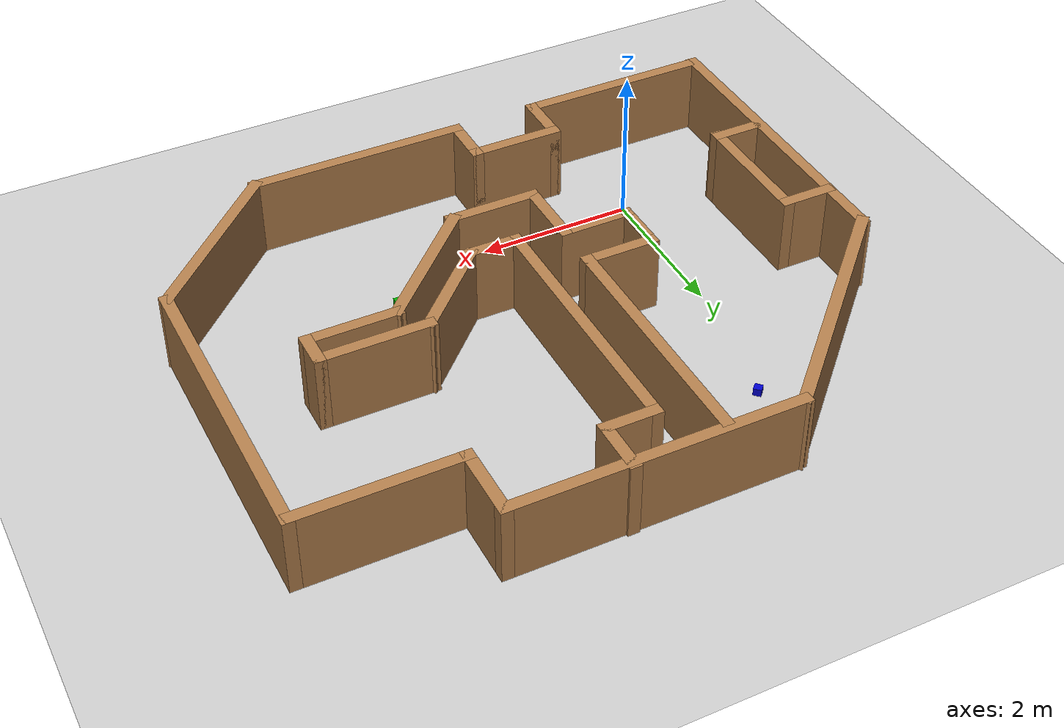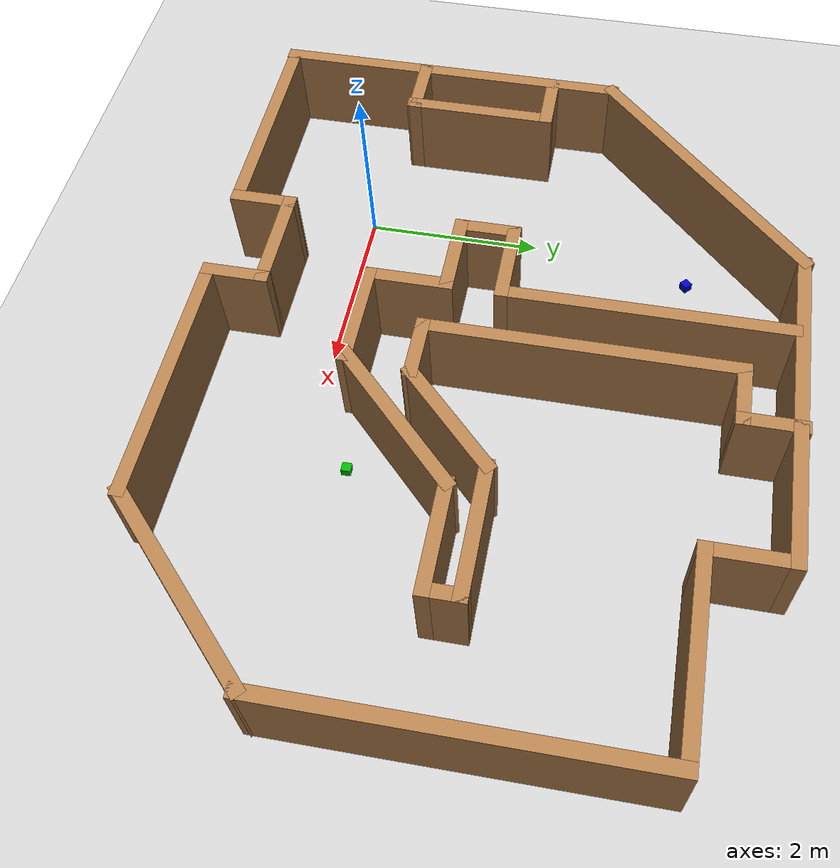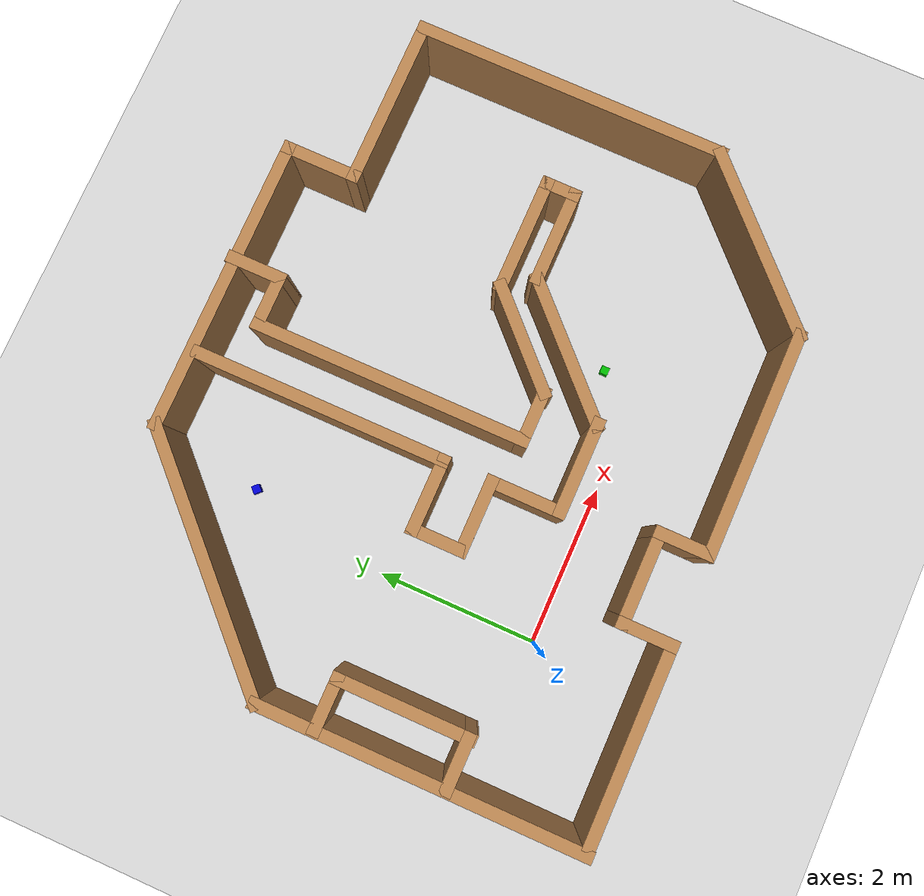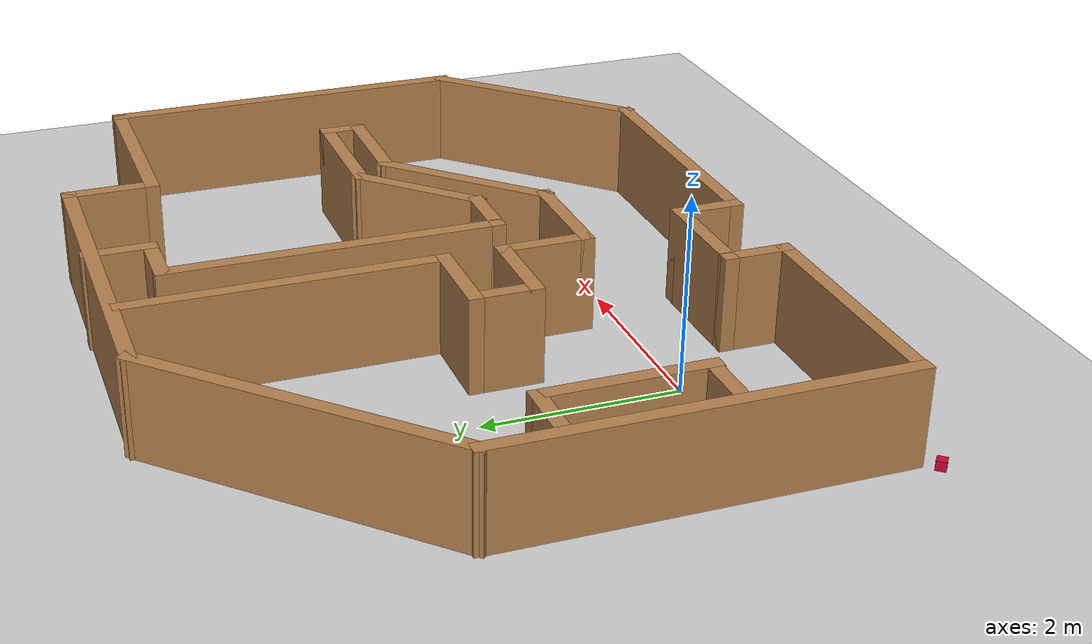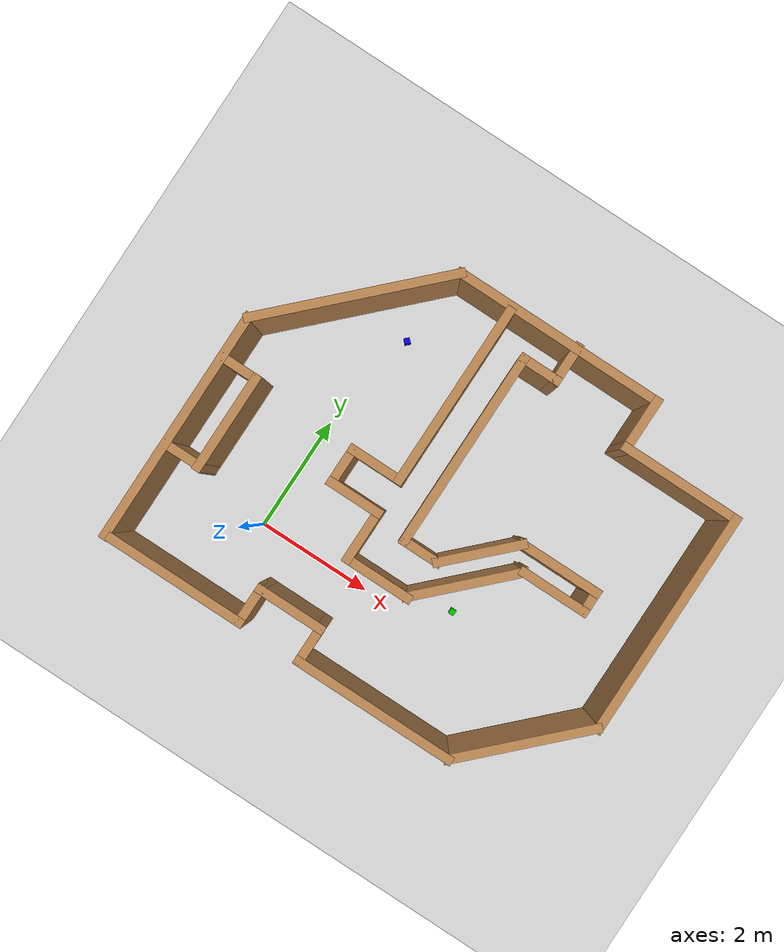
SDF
<sdf version="1.10">
 <world name="default">
  <plugin name="gz::sim::systems::Physics" filename="gz-sim-physics-system"/>
  <plugin name="gz::sim::systems::UserCommands" filename="gz-sim-user-commands-system"/>
  <plugin name="gz::sim::systems::NavSat" filename="gz-sim-navsat-system"/>
  <plugin name="gz::sim::systems::SceneBroadcaster" filename="gz-sim-scene-broadcaster-system"/>
  <plugin name="gz::sim::systems::Sensors" filename="gz-sim-sensors-system">
   <render_engine>ogre2</render_engine>
  </plugin>
  <plugin name="gz::sim::systems::Imu" filename="gz-sim-imu-system"/>
  <gravity>0 0 -9.8000000000000007</gravity>
  <magnetic_field>6.0000000000000002e-06 2.3e-05 -4.1999999999999998e-05</magnetic_field>
  <atmosphere type="adiabatic"/>
  <physics name="3ms" type="ode">
   <max_step_size>0.0030000000000000001</max_step_size>
   <real_time_factor>1</real_time_factor>
   <real_time_update_rate>1000</real_time_update_rate>
  </physics>
  <scene>
   <ambient>0.800000012 0.800000012 0.800000012 1</ambient>
   <background>0.699999988 0.699999988 0.699999988 1</background>
   <shadows>false</shadows>
  </scene>
  <spherical_coordinates>
   <surface_model>EARTH_WGS84</surface_model>
   <latitude_deg>0</latitude_deg>
   <longitude_deg>0</longitude_deg>
   <elevation>0</elevation>
   <heading_deg>0</heading_deg>
  </spherical_coordinates>
  <model name="ground_plane">
   <static>true</static>
   <link name="link">
    <collision name="collision">
     <geometry><plane><normal>0 0 1</normal><size>100 100</size></plane></geometry>
     <surface>
      <contact><collide_bitmask>65535</collide_bitmask></contact>
      <friction><ode><mu>100</mu><mu2>50</mu2></ode></friction>
     </surface>
    </collision>
    <visual name="visual">
     <cast_shadows>false</cast_shadows>
     <geometry><plane><normal>0 0 1</normal><size>100 100</size></plane></geometry>
     <material>
      <script><uri>file://media/materials/scripts/gazebo.material</uri><name>Gazebo/Grey</name></script>
     </material>
    </visual>
    <inertial>
     <mass>1</mass>
     <inertia><ixx>1</ixx><ixy>0</ixy><ixz>0</ixz><iyy>1</iyy><iyz>0</iyz><izz>1</izz></inertia>
    </inertial>
   </link>
  </model>
  <model name="sim_house">
   <pose>2.1646399999999999 1.8251500000000001 0 0 0 0</pose>
   <link name="Wall_0">
    <collision name="Wall_0_Collision">
     <geometry><box><size>2.5 0.14999999999999999 1</size></box></geometry>
     <pose>0 0 0.5 0 0 0</pose>
    </collision>
    <visual name="Wall_0_Visual">
     <pose>0 0 0.5 0 0 0</pose>
     <geometry><box><size>2.5 0.14999999999999999 1</size></box></geometry>
     <material>
      <script><uri>file://media/materials/scripts/gazebo.material</uri><name>Gazebo/Wood</name></script>
      <ambient>1 1 1 1</ambient>
     </material>
     <meta><layer>0</layer></meta>
    </visual>
    <pose>-2.7009799999999999 -3.1808800000000002 0 0 0 0</pose>
    <inertial>
     <mass>1</mass>
     <inertia><ixx>1</ixx><ixy>0</ixy><ixz>0</ixz><iyy>1</iyy><iyz>0</iyz><izz>1</izz></inertia>
    </inertial>
   </link>
   <link name="Wall_1">
    <collision name="Wall_1_Collision">
     <geometry><box><size>0.75 0.14999999999999999 1</size></box></geometry>
     <pose>0 0 0.5 0 0 0</pose>
    </collision>
    <visual name="Wall_1_Visual">
     <pose>0 0 0.5 0 0 0</pose>
     <geometry><box><size>0.75 0.14999999999999999 1</size></box></geometry>
     <material>
      <script><uri>file://media/materials/scripts/gazebo.material</uri><name>Gazebo/Wood</name></script>
      <ambient>1 1 1 1</ambient>
     </material>
     <meta><layer>0</layer></meta>
    </visual>
    <pose>-1.5259799999999999 -2.8808799999999999 0 0 0 1.5708000000000006</pose>
    <inertial>
     <mass>1</mass>
     <inertia><ixx>1</ixx><ixy>0</ixy><ixz>0</ixz><iyy>1</iyy><iyz>0</iyz><izz>1</izz></inertia>
    </inertial>
   </link>
   <link name="Wall_10">
    <collision name="Wall_10_Collision">
     <geometry><box><size>3.5 0.14999999999999999 1</size></box></geometry>
     <pose>0 0 0.5 0 0 0</pose>
    </collision>
    <visual name="Wall_10_Visual">
     <pose>0 0 0.5 0 0 0</pose>
     <geometry><box><size>3.5 0.14999999999999999 1</size></box></geometry>
     <material>
      <script><uri>file://media/materials/scripts/gazebo.material</uri><name>Gazebo/Wood</name></script>
      <ambient>1 1 1 1</ambient>
     </material>
     <meta><layer>0</layer></meta>
    </visual>
    <pose>-2.7986300000000002 1.99647 0 0 0 -2.3561899999999998</pose>
    <inertial>
     <mass>1</mass>
     <inertia><ixx>1</ixx><ixy>0</ixy><ixz>0</ixz><iyy>1</iyy><iyz>0</iyz><izz>1</izz></inertia>
    </inertial>
   </link>
   <link name="Wall_11">
    <collision name="Wall_11_Collision">
     <geometry><box><size>4.1529999999999996 0.14999999999999999 1</size></box></geometry>
     <pose>0 0 0.5 0 0 0</pose>
    </collision>
    <visual name="Wall_11_Visual">
     <pose>0 0 0.5 0 0 0</pose>
     <geometry><box><size>4.1529999999999996 0.14999999999999999 1</size></box></geometry>
     <material>
      <script><uri>file://media/materials/scripts/gazebo.material</uri><name>Gazebo/Wood</name></script>
      <ambient>1 1 1 1</ambient>
     </material>
     <meta><layer>0</layer></meta>
    </visual>
    <pose>-3.98298 -1.1893800000000001 0 0 0 -1.5708000000000006</pose>
    <inertial>
     <mass>1</mass>
     <inertia><ixx>1</ixx><ixy>0</ixy><ixz>0</ixz><iyy>1</iyy><iyz>0</iyz><izz>1</izz></inertia>
    </inertial>
   </link>
   <link name="Wall_13">
    <collision name="Wall_13_Collision">
     <geometry><box><size>0.75 0.14999999999999999 1</size></box></geometry>
     <pose>0 0 0.5 0 0 0</pose>
    </collision>
    <visual name="Wall_13_Visual">
     <pose>0 0 0.5 0 0 0</pose>
     <geometry><box><size>0.75 0.14999999999999999 1</size></box></geometry>
     <material>
      <script><uri>file://media/materials/scripts/gazebo.material</uri><name>Gazebo/Wood</name></script>
      <ambient>1 1 1 1</ambient>
     </material>
     <meta><layer>0</layer></meta>
    </visual>
    <pose>-3.6652999999999998 0.087099000000000038 0 0 0 0</pose>
    <inertial>
     <mass>1</mass>
     <inertia><ixx>1</ixx><ixy>0</ixy><ixz>0</ixz><iyy>1</iyy><iyz>0</iyz><izz>1</izz></inertia>
    </inertial>
   </link>
   <link name="Wall_14">
    <collision name="Wall_14_Collision">
     <geometry><box><size>1.7643200000000001 0.14999999999999999 1</size></box></geometry>
     <pose>0 0 0.5 0 0 0</pose>
    </collision>
    <visual name="Wall_14_Visual">
     <pose>0 0 0.5 0 0 0</pose>
     <geometry><box><size>1.7643200000000001 0.14999999999999999 1</size></box></geometry>
     <material>
      <script><uri>file://media/materials/scripts/gazebo.material</uri><name>Gazebo/Wood</name></script>
      <ambient>1 1 1 1</ambient>
     </material>
     <meta><layer>0</layer></meta>
    </visual>
    <pose>-3.3653 -0.72005799999999998 0 0 0 -1.5708000000000006</pose>
    <inertial>
     <mass>1</mass>
     <inertia><ixx>1</ixx><ixy>0</ixy><ixz>0</ixz><iyy>1</iyy><iyz>0</iyz><izz>1</izz></inertia>
    </inertial>
   </link>
   <link name="Wall_15">
    <collision name="Wall_15_Collision">
     <geometry><box><size>0.75 0.14999999999999999 1</size></box></geometry>
     <pose>0 0 0.5 0 0 0</pose>
    </collision>
    <visual name="Wall_15_Visual">
     <pose>0 0 0.5 0 0 0</pose>
     <geometry><box><size>0.75 0.14999999999999999 1</size></box></geometry>
     <material>
      <script><uri>file://media/materials/scripts/gazebo.material</uri><name>Gazebo/Wood</name></script>
      <ambient>1 1 1 1</ambient>
     </material>
     <meta><layer>0</layer></meta>
    </visual>
    <pose>-3.6652999999999998 -1.5071000000000001 0 0 0 3.1415899999999999</pose>
    <inertial>
     <mass>1</mass>
     <inertia><ixx>1</ixx><ixy>0</ixy><ixz>0</ixz><iyy>1</iyy><iyz>0</iyz><izz>1</izz></inertia>
    </inertial>
   </link>
   <link name="Wall_17">
    <collision name="Wall_17_Collision">
     <geometry><box><size>3.25 0.14999999999999999 1</size></box></geometry>
     <pose>0 0 0.5 0 0 0</pose>
    </collision>
    <visual name="Wall_17_Visual">
     <pose>0 0 0.5 0 0 0</pose>
     <geometry><box><size>3.25 0.14999999999999999 1</size></box></geometry>
     <material>
      <script><uri>file://media/materials/scripts/gazebo.material</uri><name>Gazebo/Wood</name></script>
      <ambient>1 1 1 1</ambient>
     </material>
     <meta><layer>0</layer></meta>
    </visual>
    <pose>-0.66500099999999995 1.5484299999999998 0 0 0 -1.5708000000000006</pose>
    <inertial>
     <mass>1</mass>
     <inertia><ixx>1</ixx><ixy>0</ixy><ixz>0</ixz><iyy>1</iyy><iyz>0</iyz><izz>1</izz></inertia>
    </inertial>
   </link>
   <link name="Wall_18">
    <collision name="Wall_18_Collision">
     <geometry><box><size>1 0.14999999999999999 1</size></box></geometry>
     <pose>0 0 0.5 0 0 0</pose>
    </collision>
    <visual name="Wall_18_Visual">
     <pose>0 0 0.5 0 0 0</pose>
     <geometry><box><size>1 0.14999999999999999 1</size></box></geometry>
     <material>
      <script><uri>file://media/materials/scripts/gazebo.material</uri><name>Gazebo/Wood</name></script>
      <ambient>1 1 1 1</ambient>
     </material>
     <meta><layer>0</layer></meta>
    </visual>
    <pose>-1.0900000000000001 -0.0015680000000000138 0 0 0 3.1415899999999999</pose>
    <inertial>
     <mass>1</mass>
     <inertia><ixx>1</ixx><ixy>0</ixy><ixz>0</ixz><iyy>1</iyy><iyz>0</iyz><izz>1</izz></inertia>
    </inertial>
   </link>
   <link name="Wall_19">
    <collision name="Wall_19_Collision">
     <geometry><box><size>0.75 0.14999999999999999 1</size></box></geometry>
     <pose>0 0 0.5 0 0 0</pose>
    </collision>
    <visual name="Wall_19_Visual">
     <pose>0 0 0.5 0 0 0</pose>
     <geometry><box><size>0.75 0.14999999999999999 1</size></box></geometry>
     <material>
      <script><uri>file://media/materials/scripts/gazebo.material</uri><name>Gazebo/Wood</name></script>
      <ambient>1 1 1 1</ambient>
     </material>
     <meta><layer>0</layer></meta>
    </visual>
    <pose>-1.5149999999999999 -0.30156800000000006 0 0 0 -1.5708000000000006</pose>
    <inertial>
     <mass>1</mass>
     <inertia><ixx>1</ixx><ixy>0</ixy><ixz>0</ixz><iyy>1</iyy><iyz>0</iyz><izz>1</izz></inertia>
    </inertial>
   </link>
   <link name="Wall_2">
    <collision name="Wall_2_Collision">
     <geometry><box><size>1.25 0.14999999999999999 1</size></box></geometry>
     <pose>0 0 0.5 0 0 0</pose>
    </collision>
    <visual name="Wall_2_Visual">
     <pose>0 0 0.5 0 0 0</pose>
     <geometry><box><size>1.25 0.14999999999999999 1</size></box></geometry>
     <material>
      <script><uri>file://media/materials/scripts/gazebo.material</uri><name>Gazebo/Wood</name></script>
      <ambient>1 1 1 1</ambient>
     </material>
     <meta><layer>0</layer></meta>
    </visual>
    <pose>-0.97598200000000002 -2.5808800000000001 0 0 0 0</pose>
    <inertial>
     <mass>1</mass>
     <inertia><ixx>1</ixx><ixy>0</ixy><ixz>0</ixz><iyy>1</iyy><iyz>0</iyz><izz>1</izz></inertia>
    </inertial>
   </link>
   <link name="Wall_20">
    <collision name="Wall_20_Collision">
     <geometry><box><size>1 0.14999999999999999 1</size></box></geometry>
     <pose>0 0 0.5 0 0 0</pose>
    </collision>
    <visual name="Wall_20_Visual">
     <pose>0 0 0.5 0 0 0</pose>
     <geometry><box><size>1 0.14999999999999999 1</size></box></geometry>
     <material>
      <script><uri>file://media/materials/scripts/gazebo.material</uri><name>Gazebo/Wood</name></script>
      <ambient>1 1 1 1</ambient>
     </material>
     <meta><layer>0</layer></meta>
    </visual>
    <pose>-1.0900000000000001 -0.60156799999999999 0 0 0 0</pose>
    <inertial>
     <mass>1</mass>
     <inertia><ixx>1</ixx><ixy>0</ixy><ixz>0</ixz><iyy>1</iyy><iyz>0</iyz><izz>1</izz></inertia>
    </inertial>
   </link>
   <link name="Wall_21">
    <collision name="Wall_21_Collision">
     <geometry><box><size>1 0.14999999999999999 1</size></box></geometry>
     <pose>0 0 0.5 0 0 0</pose>
    </collision>
    <visual name="Wall_21_Visual">
     <pose>0 0 0.5 0 0 0</pose>
     <geometry><box><size>1 0.14999999999999999 1</size></box></geometry>
     <material>
      <script><uri>file://media/materials/scripts/gazebo.material</uri><name>Gazebo/Wood</name></script>
      <ambient>1 1 1 1</ambient>
     </material>
     <meta><layer>0</layer></meta>
    </visual>
    <pose>-0.66500099999999995 -1.02657 0 0 0 -1.5708000000000006</pose>
    <inertial>
     <mass>1</mass>
     <inertia><ixx>1</ixx><ixy>0</ixy><ixz>0</ixz><iyy>1</iyy><iyz>0</iyz><izz>1</izz></inertia>
    </inertial>
   </link>
   <link name="Wall_22">
    <collision name="Wall_22_Collision">
     <geometry><box><size>1.25 0.14999999999999999 1</size></box></geometry>
     <pose>0 0 0.5 0 0 0</pose>
    </collision>
    <visual name="Wall_22_Visual">
     <pose>0 0 0.5 0 0 0</pose>
     <geometry><box><size>1.25 0.14999999999999999 1</size></box></geometry>
     <material>
      <script><uri>file://media/materials/scripts/gazebo.material</uri><name>Gazebo/Wood</name></script>
      <ambient>1 1 1 1</ambient>
     </material>
     <meta><layer>0</layer></meta>
    </visual>
    <pose>-0.11500099999999991 -1.45157 0 0 0 0</pose>
    <inertial>
     <mass>1</mass>
     <inertia><ixx>1</ixx><ixy>0</ixy><ixz>0</ixz><iyy>1</iyy><iyz>0</iyz><izz>1</izz></inertia>
    </inertial>
   </link>
   <link name="Wall_24">
    <collision name="Wall_24_Collision">
     <geometry><box><size>0.75 0.14999999999999999 1</size></box></geometry>
     <pose>0 0 0.5 0 0 0</pose>
    </collision>
    <visual name="Wall_24_Visual">
     <pose>0 0 0.5 0 0 0</pose>
     <geometry><box><size>0.75 0.14999999999999999 1</size></box></geometry>
     <material>
      <script><uri>file://media/materials/scripts/gazebo.material</uri><name>Gazebo/Wood</name></script>
      <ambient>1 1 1 1</ambient>
     </material>
     <meta><layer>0</layer></meta>
    </visual>
    <pose>0.21501799999999993 -0.74087700000000001 0 0 0 3.1415899999999999</pose>
    <inertial>
     <mass>1</mass>
     <inertia><ixx>1</ixx><ixy>0</ixy><ixz>0</ixz><iyy>1</iyy><iyz>0</iyz><izz>1</izz></inertia>
    </inertial>
   </link>
   <link name="Wall_25">
    <collision name="Wall_25_Collision">
     <geometry><box><size>3.5 0.14999999999999999 1</size></box></geometry>
     <pose>0 0 0.5 0 0 0</pose>
    </collision>
    <visual name="Wall_25_Visual">
     <pose>0 0 0.5 0 0 0</pose>
     <geometry><box><size>3.5 0.14999999999999999 1</size></box></geometry>
     <material>
      <script><uri>file://media/materials/scripts/gazebo.material</uri><name>Gazebo/Wood</name></script>
      <ambient>1 1 1 1</ambient>
     </material>
     <meta><layer>0</layer></meta>
    </visual>
    <pose>-0.084982000000000113 0.93412300000000004 0 0 0 1.5708000000000006</pose>
    <inertial>
     <mass>1</mass>
     <inertia><ixx>1</ixx><ixy>0</ixy><ixz>0</ixz><iyy>1</iyy><iyz>0</iyz><izz>1</izz></inertia>
    </inertial>
   </link>
   <link name="Wall_29">
    <collision name="Wall_29_Collision">
     <geometry><box><size>1.5 0.14999999999999999 1</size></box></geometry>
     <pose>0 0 0.5 0 0 0</pose>
    </collision>
    <visual name="Wall_29_Visual">
     <pose>0 0 0.5 0 0 0</pose>
     <geometry><box><size>1.5 0.14999999999999999 1</size></box></geometry>
     <material>
      <script><uri>file://media/materials/scripts/gazebo.material</uri><name>Gazebo/Wood</name></script>
      <ambient>1 1 1 1</ambient>
     </material>
     <meta><layer>0</layer></meta>
    </visual>
    <pose>0.99231500000000006 -0.26357999999999993 0 0 0 0.78539799999999982</pose>
    <inertial>
     <mass>1</mass>
     <inertia><ixx>1</ixx><ixy>0</ixy><ixz>0</ixz><iyy>1</iyy><iyz>0</iyz><izz>1</izz></inertia>
    </inertial>
   </link>
   <link name="Wall_3">
    <collision name="Wall_3_Collision">
     <geometry><box><size>0.75 0.14999999999999999 1</size></box></geometry>
     <pose>0 0 0.5 0 0 0</pose>
    </collision>
    <visual name="Wall_3_Visual">
     <pose>0 0 0.5 0 0 0</pose>
     <geometry><box><size>0.75 0.14999999999999999 1</size></box></geometry>
     <material>
      <script><uri>file://media/materials/scripts/gazebo.material</uri><name>Gazebo/Wood</name></script>
      <ambient>1 1 1 1</ambient>
     </material>
     <meta><layer>0</layer></meta>
    </visual>
    <pose>-0.42598200000000008 -2.8808799999999999 0 0 0 -1.5708000000000006</pose>
    <inertial>
     <mass>1</mass>
     <inertia><ixx>1</ixx><ixy>0</ixy><ixz>0</ixz><iyy>1</iyy><iyz>0</iyz><izz>1</izz></inertia>
    </inertial>
   </link>
   <link name="Wall_30">
    <collision name="Wall_30_Collision">
     <geometry><box><size>1.5 0.14999999999999999 1</size></box></geometry>
     <pose>0 0 0.5 0 0 0</pose>
    </collision>
    <visual name="Wall_30_Visual">
     <pose>0 0 0.5 0 0 0</pose>
     <geometry><box><size>1.5 0.14999999999999999 1</size></box></geometry>
     <material>
      <script><uri>file://media/materials/scripts/gazebo.material</uri><name>Gazebo/Wood</name></script>
      <ambient>1 1 1 1</ambient>
     </material>
     <meta><layer>0</layer></meta>
    </visual>
    <pose>2.1446100000000001 0.21371699999999993 0 0 0 0</pose>
    <inertial>
     <mass>1</mass>
     <inertia><ixx>1</ixx><ixy>0</ixy><ixz>0</ixz><iyy>1</iyy><iyz>0</iyz><izz>1</izz></inertia>
    </inertial>
   </link>
   <link name="Wall_31">
    <collision name="Wall_31_Collision">
     <geometry><box><size>0.5 0.14999999999999999 1</size></box></geometry>
     <pose>0 0 0.5 0 0 0</pose>
    </collision>
    <visual name="Wall_31_Visual">
     <pose>0 0 0.5 0 0 0</pose>
     <geometry><box><size>0.5 0.14999999999999999 1</size></box></geometry>
     <material>
      <script><uri>file://media/materials/scripts/gazebo.material</uri><name>Gazebo/Wood</name></script>
      <ambient>1 1 1 1</ambient>
     </material>
     <meta><layer>0</layer></meta>
    </visual>
    <pose>2.8196099999999999 0.038717000000000112 0 0 0 -1.5708000000000006</pose>
    <inertial>
     <mass>1</mass>
     <inertia><ixx>1</ixx><ixy>0</ixy><ixz>0</ixz><iyy>1</iyy><iyz>0</iyz><izz>1</izz></inertia>
    </inertial>
   </link>
   <link name="Wall_32">
    <collision name="Wall_32_Collision">
     <geometry><box><size>1.25 0.14999999999999999 1</size></box></geometry>
     <pose>0 0 0.5 0 0 0</pose>
    </collision>
    <visual name="Wall_32_Visual">
     <pose>0 0 0.5 0 0 0</pose>
     <geometry><box><size>1.25 0.14999999999999999 1</size></box></geometry>
     <material>
      <script><uri>file://media/materials/scripts/gazebo.material</uri><name>Gazebo/Wood</name></script>
      <ambient>1 1 1 1</ambient>
     </material>
     <meta><layer>0</layer></meta>
    </visual>
    <pose>2.2696100000000001 -0.13628299999999993 0 0 0 3.1415899999999999</pose>
    <inertial>
     <mass>1</mass>
     <inertia><ixx>1</ixx><ixy>0</ixy><ixz>0</ixz><iyy>1</iyy><iyz>0</iyz><izz>1</izz></inertia>
    </inertial>
   </link>
   <link name="Wall_33">
    <collision name="Wall_33_Collision">
     <geometry><box><size>2 0.14999999999999999 1</size></box></geometry>
     <pose>0 0 0.5 0 0 0</pose>
    </collision>
    <visual name="Wall_33_Visual">
     <pose>0 0 0.5 0 0 0</pose>
     <geometry><box><size>2 0.14999999999999999 1</size></box></geometry>
     <material>
      <script><uri>file://media/materials/scripts/gazebo.material</uri><name>Gazebo/Wood</name></script>
      <ambient>1 1 1 1</ambient>
     </material>
     <meta><layer>0</layer></meta>
    </visual>
    <pose>1.0655399999999999 -0.79035699999999998 0 0 0 -2.3561899999999998</pose>
    <inertial>
     <mass>1</mass>
     <inertia><ixx>1</ixx><ixy>0</ixy><ixz>0</ixz><iyy>1</iyy><iyz>0</iyz><izz>1</izz></inertia>
    </inertial>
   </link>
   <link name="Wall_35">
    <collision name="Wall_35_Collision">
     <geometry><box><size>0.75 0.14999999999999999 1</size></box></geometry>
     <pose>0 0 0.5 0 0 0</pose>
    </collision>
    <visual name="Wall_35_Visual">
     <pose>0 0 0.5 0 0 0</pose>
     <geometry><box><size>0.75 0.14999999999999999 1</size></box></geometry>
     <material>
      <script><uri>file://media/materials/scripts/gazebo.material</uri><name>Gazebo/Wood</name></script>
      <ambient>1 1 1 1</ambient>
     </material>
     <meta><layer>0</layer></meta>
    </visual>
    <pose>0.21501799999999993 2.6091199999999999 0 0 0 0</pose>
    <inertial>
     <mass>1</mass>
     <inertia><ixx>1</ixx><ixy>0</ixy><ixz>0</ixz><iyy>1</iyy><iyz>0</iyz><izz>1</izz></inertia>
    </inertial>
   </link>
   <link name="Wall_36">
    <collision name="Wall_36_Collision">
     <geometry><box><size>0.75 0.14999999999999999 1</size></box></geometry>
     <pose>0 0 0.5 0 0 0</pose>
    </collision>
    <visual name="Wall_36_Visual">
     <pose>0 0 0.5 0 0 0</pose>
     <geometry><box><size>0.75 0.14999999999999999 1</size></box></geometry>
     <material>
      <script><uri>file://media/materials/scripts/gazebo.material</uri><name>Gazebo/Wood</name></script>
      <ambient>1 1 1 1</ambient>
     </material>
     <meta><layer>0</layer></meta>
    </visual>
    <pose>0.51501799999999998 2.9091200000000006 0 0 0 1.5708000000000006</pose>
    <inertial>
     <mass>1</mass>
     <inertia><ixx>1</ixx><ixy>0</ixy><ixz>0</ixz><iyy>1</iyy><iyz>0</iyz><izz>1</izz></inertia>
    </inertial>
   </link>
   <link name="Wall_4">
    <collision name="Wall_4_Collision">
     <geometry><box><size>2.8973200000000001 0.14999999999999999 1</size></box></geometry>
     <pose>0 0 0.5 0 0 0</pose>
    </collision>
    <visual name="Wall_4_Visual">
     <pose>0 0 0.5 0 0 0</pose>
     <geometry><box><size>2.8973200000000001 0.14999999999999999 1</size></box></geometry>
     <material>
      <script><uri>file://media/materials/scripts/gazebo.material</uri><name>Gazebo/Wood</name></script>
      <ambient>1 1 1 1</ambient>
     </material>
     <meta><layer>0</layer></meta>
    </visual>
    <pose>0.94767599999999996 -3.1808800000000002 0 0 0 0</pose>
    <inertial>
     <mass>1</mass>
     <inertia><ixx>1</ixx><ixy>0</ixy><ixz>0</ixz><iyy>1</iyy><iyz>0</iyz><izz>1</izz></inertia>
    </inertial>
   </link>
   <link name="Wall_5">
    <collision name="Wall_5_Collision">
     <geometry><box><size>2.5 0.14999999999999999 1</size></box></geometry>
     <pose>0 0 0.5 0 0 0</pose>
    </collision>
    <visual name="Wall_5_Visual">
     <pose>0 0 0.5 0 0 0</pose>
     <geometry><box><size>2.5 0.14999999999999999 1</size></box></geometry>
     <material>
      <script><uri>file://media/materials/scripts/gazebo.material</uri><name>Gazebo/Wood</name></script>
      <ambient>1 1 1 1</ambient>
     </material>
     <meta><layer>0</layer></meta>
    </visual>
    <pose>3.1521800000000004 -2.3500299999999998 0 0 0 0.78539799999999982</pose>
    <inertial>
     <mass>1</mass>
     <inertia><ixx>1</ixx><ixy>0</ixy><ixz>0</ixz><iyy>1</iyy><iyz>0</iyz><izz>1</izz></inertia>
    </inertial>
   </link>
   <link name="Wall_6">
    <collision name="Wall_6_Collision">
     <geometry><box><size>4 0.14999999999999999 1</size></box></geometry>
     <pose>0 0 0.5 0 0 0</pose>
    </collision>
    <visual name="Wall_6_Visual">
     <pose>0 0 0.5 0 0 0</pose>
     <geometry><box><size>4 0.14999999999999999 1</size></box></geometry>
     <material>
      <script><uri>file://media/materials/scripts/gazebo.material</uri><name>Gazebo/Wood</name></script>
      <ambient>1 1 1 1</ambient>
     </material>
     <meta><layer>0</layer></meta>
    </visual>
    <pose>3.99824 0.40582399999999996 0 0 0 1.5708000000000006</pose>
    <inertial>
     <mass>1</mass>
     <inertia><ixx>1</ixx><ixy>0</ixy><ixz>0</ixz><iyy>1</iyy><iyz>0</iyz><izz>1</izz></inertia>
    </inertial>
   </link>
   <link name="Wall_7">
    <collision name="Wall_7_Collision">
     <geometry><box><size>2.1473200000000001 0.14999999999999999 1</size></box></geometry>
     <pose>0 0 0.5 0 0 0</pose>
    </collision>
    <visual name="Wall_7_Visual">
     <pose>0 0 0.5 0 0 0</pose>
     <geometry><box><size>2.1473200000000001 0.14999999999999999 1</size></box></geometry>
     <material>
      <script><uri>file://media/materials/scripts/gazebo.material</uri><name>Gazebo/Wood</name></script>
      <ambient>1 1 1 1</ambient>
     </material>
     <meta><layer>0</layer></meta>
    </visual>
    <pose>2.9843799999999998 2.3308200000000001 0 0 0 3.1415899999999999</pose>
    <inertial>
     <mass>1</mass>
     <inertia><ixx>1</ixx><ixy>0</ixy><ixz>0</ixz><iyy>1</iyy><iyz>0</iyz><izz>1</izz></inertia>
    </inertial>
   </link>
   <link name="Wall_8">
    <collision name="Wall_8_Collision">
     <geometry><box><size>1 0.14999999999999999 1</size></box></geometry>
     <pose>0 0 0.5 0 0 0</pose>
    </collision>
    <visual name="Wall_8_Visual">
     <pose>0 0 0.5 0 0 0</pose>
     <geometry><box><size>1 0.14999999999999999 1</size></box></geometry>
     <material>
      <script><uri>file://media/materials/scripts/gazebo.material</uri><name>Gazebo/Wood</name></script>
      <ambient>1 1 1 1</ambient>
     </material>
     <meta><layer>0</layer></meta>
    </visual>
    <pose>1.9857199999999997 2.7558199999999999 0 0 0 1.5708000000000006</pose>
    <inertial>
     <mass>1</mass>
     <inertia><ixx>1</ixx><ixy>0</ixy><ixz>0</ixz><iyy>1</iyy><iyz>0</iyz><izz>1</izz></inertia>
    </inertial>
   </link>
   <link name="Wall_9">
    <collision name="Wall_9_Collision">
     <geometry><box><size>3.75 0.14999999999999999 1</size></box></geometry>
     <pose>0 0 0.5 0 0 0</pose>
    </collision>
    <visual name="Wall_9_Visual">
     <pose>0 0 0.5 0 0 0</pose>
     <geometry><box><size>3.75 0.14999999999999999 1</size></box></geometry>
     <material>
      <script><uri>file://media/materials/scripts/gazebo.material</uri><name>Gazebo/Wood</name></script>
      <ambient>1 1 1 1</ambient>
     </material>
     <meta><layer>0</layer></meta>
    </visual>
    <pose>0.18571899999999997 3.1808199999999998 0 0 0 3.1415899999999999</pose>
    <inertial>
     <mass>1</mass>
     <inertia><ixx>1</ixx><ixy>0</ixy><ixz>0</ixz><iyy>1</iyy><iyz>0</iyz><izz>1</izz></inertia>
    </inertial>
   </link>
   <static>true</static>
  </model>
  <model name="red_block">
   <pose>-1.9769041736336435 -1.5668439181327527 0.059999999999999998 0 0 -2.25</pose>
   <static>true</static>
   <link name="link">
    <inertial>
     <mass>1</mass>
     <inertia><ixx>0.01</ixx><ixy>0</ixy><ixz>0</ixz><iyy>0.01</iyy><iyz>0</iyz><izz>0.01</izz></inertia>
    </inertial>
    <collision name="collision">
     <geometry><box><size>0.10000000000000001 0.10000000000000001 0.10000000000000001</size></box></geometry>
    </collision>
    <visual name="visual">
     <geometry><box><size>0.10000000000000001 0.10000000000000001 0.10000000000000001</size></box></geometry>
     <material>
      <ambient>0.800000012 0 0.100000001 1</ambient>
      <diffuse>0.800000012 0 0.200000003 1</diffuse>
      <specular>0 0 0 0</specular>
      <emissive>0 0 0 1</emissive>
     </material>
    </visual>
   </link>
  </model>
  <model name="green_block">
   <pose>3.3998777960777828 0.49999998755516772 0.059999999999999998 0 0 1.5709999999999995</pose>
   <static>true</static>
   <link name="link">
    <inertial>
     <mass>1</mass>
     <inertia><ixx>0.01</ixx><ixy>0</ixy><ixz>0</ixz><iyy>0.01</iyy><iyz>0</iyz><izz>0.01</izz></inertia>
    </inertial>
    <collision name="collision">
     <geometry><box><size>0.10000000000000001 0.10000000000000001 0.10000000000000001</size></box></geometry>
    </collision>
    <visual name="visual">
     <geometry><box><size>0.10000000000000001 0.10000000000000001 0.10000000000000001</size></box></geometry>
     <material>
      <ambient>0 0.699999988 0 1</ambient>
      <diffuse>0 0.699999988 0 1</diffuse>
      <specular>0 0 0 0</specular>
      <emissive>0 0 0 1</emissive>
     </material>
    </visual>
   </link>
  </model>
  <model name="blue_block">
   <pose>0.32443296150031986 3.8240951086632196 0.059999999999999998 0 0 0.78500000000000036</pose>
   <static>true</static>
   <link name="link">
    <inertial>
     <mass>1</mass>
     <inertia><ixx>0.01</ixx><ixy>0</ixy><ixz>0</ixz><iyy>0.01</iyy><iyz>0</iyz><izz>0.01</izz></inertia>
    </inertial>
    <collision name="collision">
     <geometry><box><size>0.10000000000000001 0.10000000000000001 0.10000000000000001</size></box></geometry>
    </collision>
    <visual name="visual">
     <geometry><box><size>0.10000000000000001 0.10000000000000001 0.10000000000000001</size></box></geometry>
     <material>
      <ambient>0 0 0.800000012 1</ambient>
      <diffuse>0 0 0.800000012 1</diffuse>
      <specular>0 0 0 0</specular>
      <emissive>0 0 0 1</emissive>
     </material>
    </visual>
   </link>
  </model>
  <light name="sun" type="directional">
   <pose>0 0 10 0 0 0</pose>
   <cast_shadows>false</cast_shadows>
   <intensity>1</intensity>
   <direction>-0.5 0.10000000000000001 -0.90000000000000002</direction>
   <diffuse>0.800000012 0.800000012 0.800000012 1</diffuse>
   <specular>0.200000003 0.200000003 0.200000003 1</specular>
   <attenuation>
    <range>1000</range>
    <linear>0.01</linear>
    <constant>0.90000000000000002</constant>
    <quadratic>0.001</quadratic>
   </attenuation>
   <spot><inner_angle>0</inner_angle><outer_angle>0</outer_angle><falloff>0</falloff></spot>
  </light>
 </world>
</sdf>
